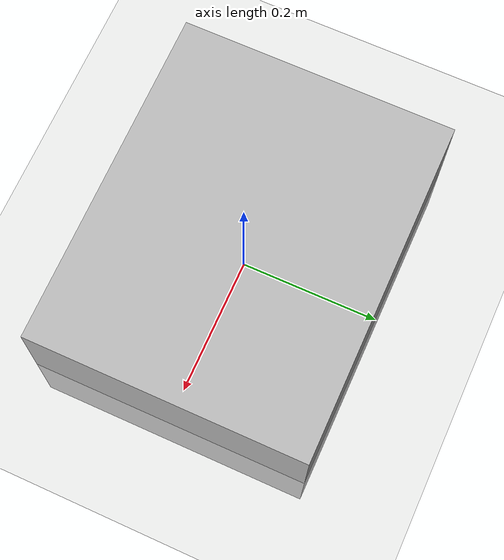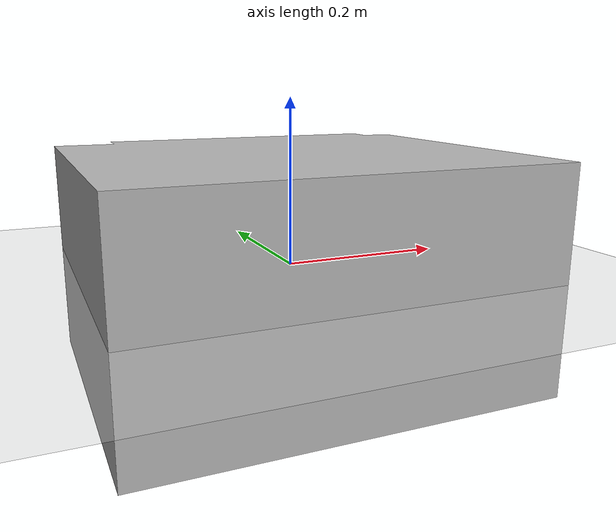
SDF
<?xml version="1.0"?>
<sdf version="1.6">
  <world name="default">
    <scene>
      <shadows>false</shadows>
    </scene>
    <include>
      <uri>model://sun</uri>
    </include>
    <include>
      <uri>model://ground_plane</uri>
    </include>

    <include>
      <uri>model://parcel_box</uri>
      <pose>0 0 0 0 0 0</pose>
    </include>
    <plugin name="ros_link_attacher_plugin" filename="libgazebo_ros_link_attacher.so"/>
  </world>
</sdf>

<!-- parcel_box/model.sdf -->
<sdf version="1.4">
  <model name="parcel_box">
    <pose>0 0 0.135 0 0 0</pose>
    <link name="link">
      <inertial>
        <mass>0.00001</mass>
        <inertia>
          <ixx>0.00000001940</ixx>
          <ixy>0</ixy>
          <ixz>0</ixz>
          <iyy>0.00000002690833</iyy>
          <iyz>0</iyz>
          <izz>0.000000034166</izz>
        </inertia>
      </inertial>
      <collision name="collision">
        <geometry>
          <box>
            <size>0.5 0.4 0.26</size>
          </box>
        </geometry>
      </collision>
      <visual name="visual">
        <pose>0 0 -0.135 0 0 0</pose>
        <geometry>
          <mesh>
            <uri>model://parcel_box/meshes/parcel_box.obj</uri>
          </mesh>
        </geometry>
      </visual>
    </link>
  </model>
</sdf>
